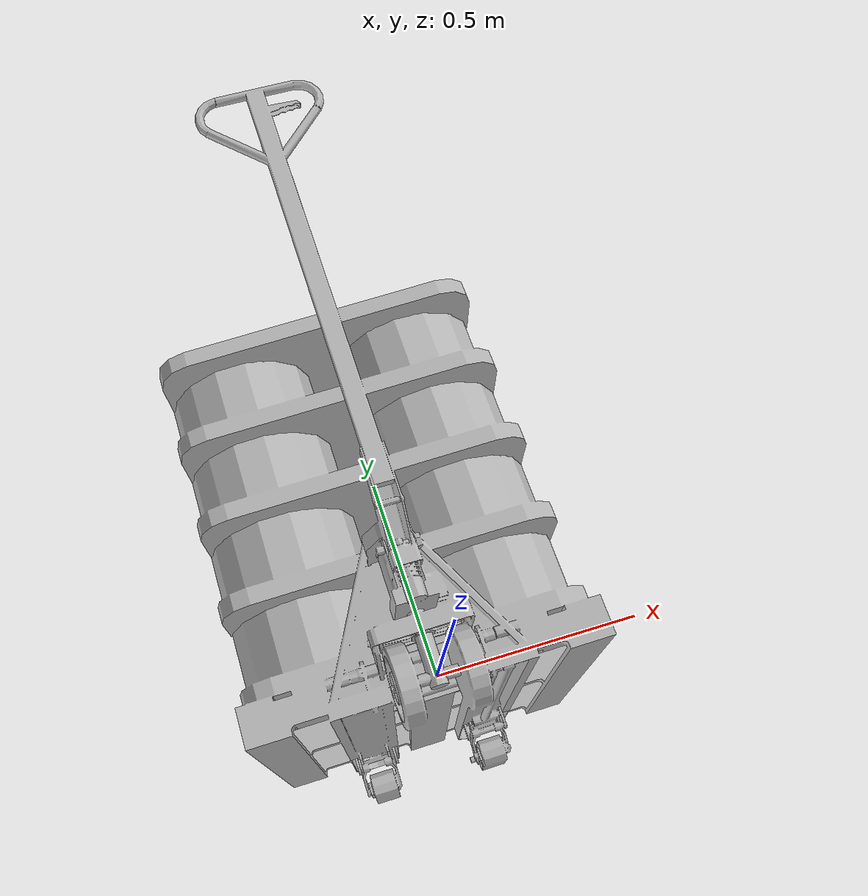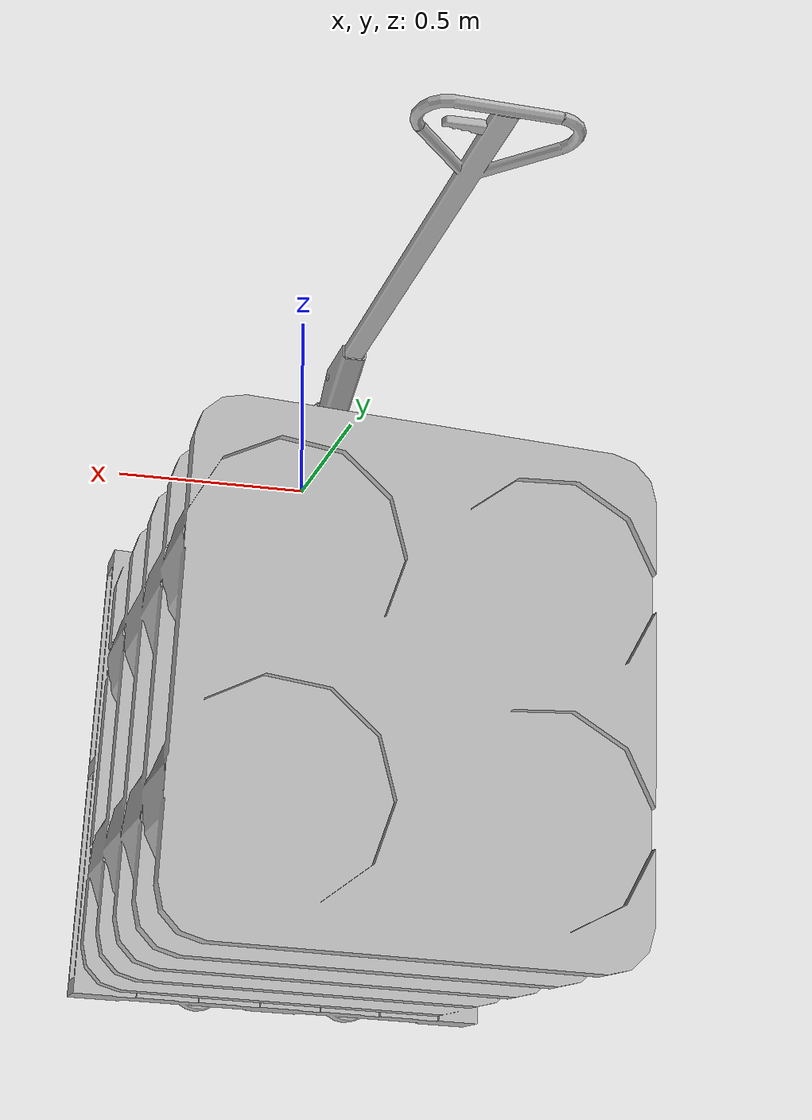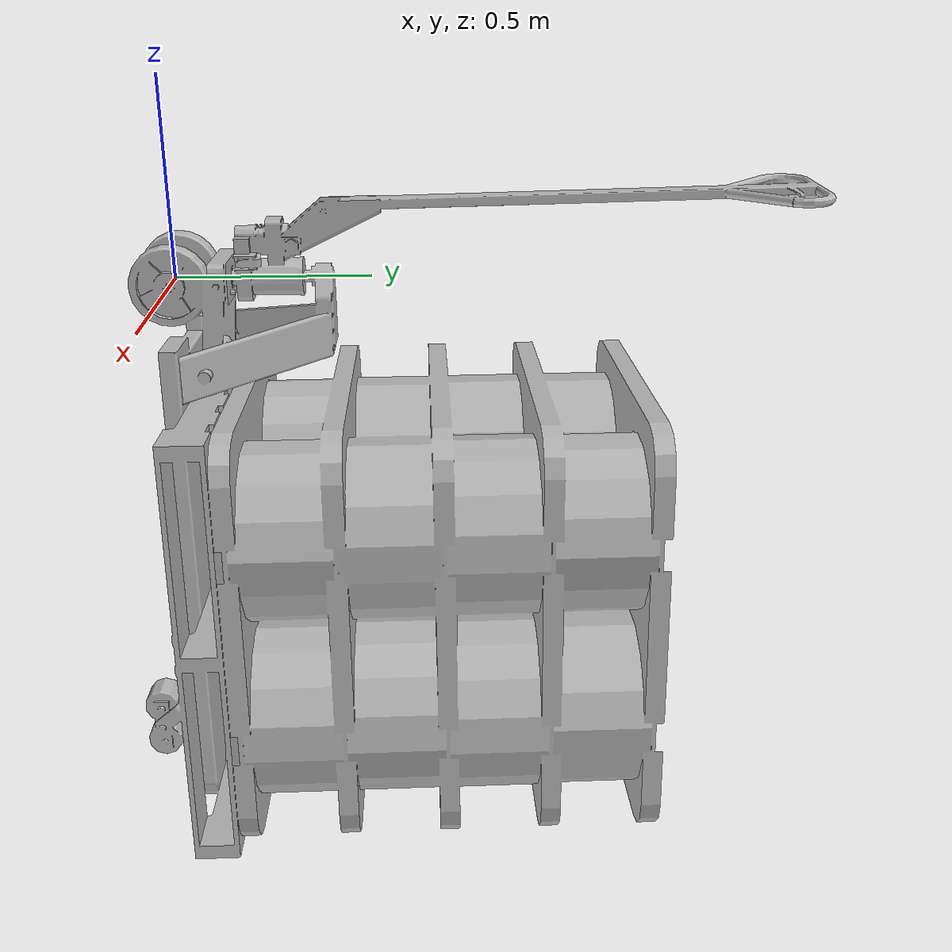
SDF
<?xml version="1.0" ?>
<sdf version="1.6">
  <model name="Hand_truck_pallet_forged_wheels">
    <static>true</static>
    <link name="link">
      <visual name="visual">
        <geometry>
          <mesh>
            <uri>model://Hand_truck_pallet_forged_wheels/meshes/Hand_truck_pallet_forged_wheels.obj</uri>
          </mesh>
        </geometry>
      </visual>
      <collision name="collision">
        <geometry>
          <mesh>
            <uri>model://Hand_truck_pallet_forged_wheels/meshes/Hand_truck_pallet_forged_wheels.obj</uri>
          </mesh>
        </geometry>
      </collision>
    </link>
  </model>
</sdf>
